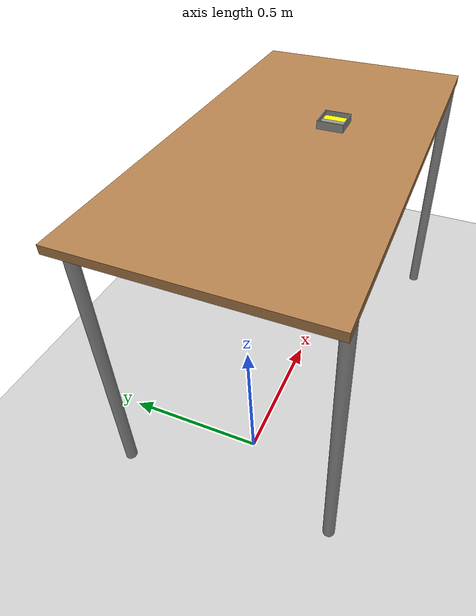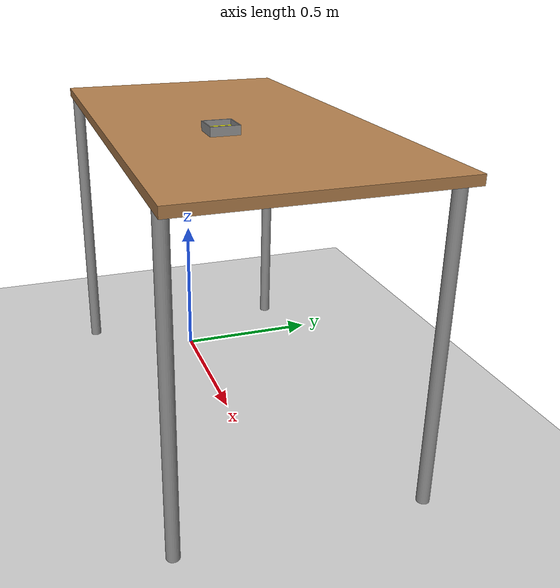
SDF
<sdf version="1.7">
 <world name="default">
  <light name="sun" type="directional">
   <pose>0 0 10 0 -0 0</pose>
   <diffuse>0.8 0.8 0.8 1</diffuse>
   <specular>0.2 0.2 0.2 1</specular>
   <attenuation>
    <range>1000</range>
    <constant>0.9</constant>
    <linear>0.01</linear>
    <quadratic>0.001</quadratic>
   </attenuation>
   <direction>-0.5 0.1 -0.9</direction>
   <spot><inner_angle>0</inner_angle><outer_angle>0</outer_angle><falloff>0</falloff></spot>
  </light>
  <model name="ground_plane">
   <static>1</static>
   <link name="link">
    <collision name="collision">
     <geometry><plane><normal>0 0 1</normal><size>100 100</size></plane></geometry>
     <surface>
      <contact><collide_bitmask>65535</collide_bitmask></contact>
      <friction><ode><mu>100</mu><mu2>50</mu2></ode></friction>
     </surface>
    </collision>
    <visual name="visual">
     <cast_shadows>0</cast_shadows>
     <geometry><plane><normal>0 0 1</normal><size>100 100</size></plane></geometry>
     <material>
      <script><uri>file://media/materials/scripts/gazebo.material</uri><name>Gazebo/Grey</name></script>
     </material>
    </visual>
   </link>
  </model>
  <gravity>0 0 -9.8</gravity>
  <magnetic_field>6e-06 2.3e-05 -4.2e-05</magnetic_field>
  <atmosphere type="adiabatic"/>
  <physics type="ode">
   <max_step_size>0.001</max_step_size>
   <real_time_factor>1</real_time_factor>
   <real_time_update_rate>1000</real_time_update_rate>
  </physics>
  <scene><ambient>0.4 0.4 0.4 1</ambient><background>0.7 0.7 0.7 1</background><shadows>1</shadows></scene>
  <spherical_coordinates>
   <surface_model>EARTH_WGS84</surface_model>
   <latitude_deg>0</latitude_deg>
   <longitude_deg>0</longitude_deg>
   <elevation>0</elevation>
   <heading_deg>0</heading_deg>
  </spherical_coordinates>
  <model name="table">
   <static>1</static>
   <link name="link">
    <collision name="surface">
     <pose>0 0 1 0 -0 0</pose>
     <geometry><box><size>1.5 0.8 0.03</size></box></geometry>
     <surface><friction><ode><mu>0.6</mu><mu2>0.6</mu2></ode></friction></surface>
    </collision>
    <visual name="visual1">
     <pose>0 0 1 0 -0 0</pose>
     <geometry><box><size>1.5 0.8 0.03</size></box></geometry>
     <material>
      <script><uri>file://media/materials/scripts/gazebo.material</uri><name>Gazebo/Wood</name></script>
     </material>
    </visual>
    <collision name="front_left_leg">
     <pose>0.68 0.38 0.5 0 -0 0</pose>
     <geometry><cylinder><radius>0.02</radius><length>1</length></cylinder></geometry>
    </collision>
    <visual name="front_left_leg">
     <pose>0.68 0.38 0.5 0 -0 0</pose>
     <geometry><cylinder><radius>0.02</radius><length>1</length></cylinder></geometry>
     <material>
      <script><uri>file://media/materials/scripts/gazebo.material</uri><name>Gazebo/Grey</name></script>
     </material>
    </visual>
    <collision name="front_right_leg">
     <pose>0.68 -0.38 0.5 0 -0 0</pose>
     <geometry><cylinder><radius>0.02</radius><length>1</length></cylinder></geometry>
    </collision>
    <visual name="front_right_leg">
     <pose>0.68 -0.38 0.5 0 -0 0</pose>
     <geometry><cylinder><radius>0.02</radius><length>1</length></cylinder></geometry>
     <material>
      <script><uri>file://media/materials/scripts/gazebo.material</uri><name>Gazebo/Grey</name></script>
     </material>
    </visual>
    <collision name="back_right_leg">
     <pose>-0.68 -0.38 0.5 0 -0 0</pose>
     <geometry><cylinder><radius>0.02</radius><length>1</length></cylinder></geometry>
    </collision>
    <visual name="back_right_leg">
     <pose>-0.68 -0.38 0.5 0 -0 0</pose>
     <geometry><cylinder><radius>0.02</radius><length>1</length></cylinder></geometry>
     <material>
      <script><uri>file://media/materials/scripts/gazebo.material</uri><name>Gazebo/Grey</name></script>
     </material>
    </visual>
    <collision name="back_left_leg">
     <pose>-0.68 0.38 0.5 0 -0 0</pose>
     <geometry><cylinder><radius>0.02</radius><length>1</length></cylinder></geometry>
    </collision>
    <visual name="back_left_leg">
     <pose>-0.68 0.38 0.5 0 -0 0</pose>
     <geometry><cylinder><radius>0.02</radius><length>1</length></cylinder></geometry>
     <material>
      <script><uri>file://media/materials/scripts/gazebo.material</uri><name>Gazebo/Grey</name></script>
     </material>
    </visual>
   </link>
   <pose>0.47976 0.019502 0 0 -0 0</pose>
  </model>
  <model name="Provino_vero">
   <link name="link_1">
    <inertial>
     <mass>1</mass>
     <inertia>
      <ixx>0.166667</ixx>
      <ixy>0</ixy>
      <ixz>0</ixz>
      <iyy>0.166667</iyy>
      <iyz>0</iyz>
      <izz>0.166667</izz>
     </inertia>
    </inertial>
    <pose>-0.008313 -0.007251 0 0 -0 0</pose>
    <visual name="visual">
     <geometry>
      <mesh>
       <uri>/home/eleonora/catkin_ws/src/robotics_project/Provino_vero/meshes/Case.dae</uri>
       <scale>1 1 1</scale>
      </mesh>
     </geometry>
     <material>
      <lighting>1</lighting>
      <script><uri>file://media/materials/scripts/gazebo.material</uri><name>Gazebo/Grey</name></script>
      <shader type="pixel"><normal_map>__default__</normal_map></shader>
      <emissive>1 1 1 1</emissive>
      <ambient>1 1 1 1</ambient>
      <diffuse>1 1 1 1</diffuse>
      <specular>1 1 1 1</specular>
     </material>
    </visual>
    <collision name="collision">
     <geometry>
      <mesh>
       <uri>/home/eleonora/catkin_ws/src/robotics_project/Provino_vero/meshes/Case.dae</uri>
       <scale>1 1 1</scale>
      </mesh>
     </geometry>
     <surface>
      <friction>
       <ode><mu>1</mu><mu2>1</mu2><fdir1>0 0 0</fdir1><slip1>0</slip1><slip2>0</slip2></ode>
       <torsional>
        <coefficient>1</coefficient>
        <patch_radius>0</patch_radius>
        <surface_radius>0</surface_radius>
        <use_patch_radius>1</use_patch_radius>
        <ode><slip>0</slip></ode>
       </torsional>
      </friction>
      <bounce><restitution_coefficient>0</restitution_coefficient><threshold>1e+06</threshold></bounce>
      <contact>
       <collide_without_contact>0</collide_without_contact>
       <collide_without_contact_bitmask>1</collide_without_contact_bitmask>
       <collide_bitmask>1</collide_bitmask>
       <ode>
        <soft_cfm>0</soft_cfm>
        <soft_erp>0.2</soft_erp>
        <kp>1e+13</kp>
        <kd>1</kd>
        <max_vel>0.01</max_vel>
        <min_depth>0</min_depth>
       </ode>
       <bullet>
        <split_impulse>1</split_impulse>
        <split_impulse_penetration_threshold>-0.01</split_impulse_penetration_threshold>
        <soft_cfm>0</soft_cfm>
        <soft_erp>0.2</soft_erp>
        <kp>1e+13</kp>
        <kd>1</kd>
       </bullet>
      </contact>
     </surface>
    </collision>
   </link>
   <link name="link_3">
    <inertial>
     <mass>1</mass>
     <inertia>
      <ixx>0.166667</ixx>
      <ixy>0</ixy>
      <ixz>0</ixz>
      <iyy>0.166667</iyy>
      <iyz>0</iyz>
      <izz>0.166667</izz>
     </inertia>
    </inertial>
    <pose>0.002637 0.002299 0 0 -0 0</pose>
    <visual name="visual">
     <geometry>
      <mesh>
       <uri>/home/eleonora/catkin_ws/src/robotics_project/Provino_vero/meshes/Mesh2.dae</uri>
       <scale>1 1 1</scale>
      </mesh>
     </geometry>
     <material>
      <lighting>1</lighting>
      <script><uri>file://media/materials/scripts/gazebo.material</uri><name>Gazebo/Grey</name></script>
      <shader type="pixel"><normal_map>__default__</normal_map></shader>
      <emissive>0.8 0.8 0.8 0.8</emissive>
      <ambient>0.8 0.8 0.8 0.8</ambient>
      <diffuse>0.8 0.8 0.8 0.8</diffuse>
      <specular>0.8 0.8 0.8 0.8</specular>
     </material>
    </visual>
    <collision name="collision">
     <geometry>
      <mesh>
       <uri>/home/eleonora/catkin_ws/src/robotics_project/Provino_vero/meshes/Mesh2.dae</uri>
       <scale>1 1 1</scale>
      </mesh>
     </geometry>
     <surface>
      <friction>
       <ode><mu>1</mu><mu2>1</mu2><fdir1>0 0 0</fdir1><slip1>0</slip1><slip2>0</slip2></ode>
       <torsional>
        <coefficient>1</coefficient>
        <patch_radius>0</patch_radius>
        <surface_radius>0</surface_radius>
        <use_patch_radius>1</use_patch_radius>
        <ode><slip>0</slip></ode>
       </torsional>
      </friction>
      <bounce><restitution_coefficient>0</restitution_coefficient><threshold>1e+06</threshold></bounce>
      <contact>
       <collide_without_contact>0</collide_without_contact>
       <collide_without_contact_bitmask>1</collide_without_contact_bitmask>
       <collide_bitmask>1</collide_bitmask>
       <ode>
        <soft_cfm>0</soft_cfm>
        <soft_erp>0.2</soft_erp>
        <kp>1e+13</kp>
        <kd>1</kd>
        <max_vel>0.01</max_vel>
        <min_depth>0</min_depth>
       </ode>
       <bullet>
        <split_impulse>1</split_impulse>
        <split_impulse_penetration_threshold>-0.01</split_impulse_penetration_threshold>
        <soft_cfm>0</soft_cfm>
        <soft_erp>0.2</soft_erp>
        <kp>1e+13</kp>
        <kd>1</kd>
       </bullet>
      </contact>
     </surface>
    </collision>
   </link>
   <link name="link_4">
    <inertial>
     <mass>1</mass>
     <inertia>
      <ixx>0.166667</ixx>
      <ixy>0</ixy>
      <ixz>0</ixz>
      <iyy>0.166667</iyy>
      <iyz>0</iyz>
      <izz>0.166667</izz>
     </inertia>
    </inertial>
    <pose>0.002178 0.002478 0 0 -0 0</pose>
    <visual name="visual">
     <geometry>
      <mesh>
       <uri>/home/eleonora/catkin_ws/src/robotics_project/Provino_vero/meshes/Mesh3.dae</uri>
       <scale>1 1 1</scale>
      </mesh>
     </geometry>
     <material>
      <lighting>1</lighting>
      <script><uri>file://media/materials/scripts/gazebo.material</uri><name>Gazebo/Grey</name></script>
      <shader type="pixel"><normal_map>__default__</normal_map></shader>
      <emissive>1 1 0 0</emissive>
      <ambient>1 1 0 0</ambient>
      <diffuse>1 1 0 1</diffuse>
      <specular>1 1 0 1</specular>
     </material>
    </visual>
    <collision name="collision">
     <geometry>
      <mesh>
       <uri>/home/eleonora/catkin_ws/src/robotics_project/Provino_vero/meshes/Mesh3.dae</uri>
       <scale>1 1 1</scale>
      </mesh>
     </geometry>
     <surface>
      <friction>
       <ode><mu>1</mu><mu2>1</mu2><fdir1>0 0 0</fdir1><slip1>0</slip1><slip2>0</slip2></ode>
       <torsional>
        <coefficient>1</coefficient>
        <patch_radius>0</patch_radius>
        <surface_radius>0</surface_radius>
        <use_patch_radius>1</use_patch_radius>
        <ode><slip>0</slip></ode>
       </torsional>
      </friction>
      <bounce><restitution_coefficient>0</restitution_coefficient><threshold>1e+06</threshold></bounce>
      <contact>
       <collide_without_contact>0</collide_without_contact>
       <collide_without_contact_bitmask>1</collide_without_contact_bitmask>
       <collide_bitmask>1</collide_bitmask>
       <ode>
        <soft_cfm>0</soft_cfm>
        <soft_erp>0.2</soft_erp>
        <kp>1e+13</kp>
        <kd>1</kd>
        <max_vel>0.01</max_vel>
        <min_depth>0</min_depth>
       </ode>
       <bullet>
        <split_impulse>1</split_impulse>
        <split_impulse_penetration_threshold>-0.01</split_impulse_penetration_threshold>
        <soft_cfm>0</soft_cfm>
        <soft_erp>0.2</soft_erp>
        <kp>1e+13</kp>
        <kd>1</kd>
       </bullet>
      </contact>
     </surface>
    </collision>
   </link>
   <link name="link_5">
    <inertial>
     <mass>1</mass>
     <inertia>
      <ixx>0.166667</ixx>
      <ixy>0</ixy>
      <ixz>0</ixz>
      <iyy>0.166667</iyy>
      <iyz>0</iyz>
      <izz>0.166667</izz>
     </inertia>
    </inertial>
    <pose>0.003498 0.002473 0 0 -0 0</pose>
    <visual name="visual">
     <geometry>
      <mesh>
       <uri>/home/eleonora/catkin_ws/src/robotics_project/Provino_vero/meshes/Mesh4.dae</uri>
       <scale>1 1 1</scale>
      </mesh>
     </geometry>
     <material>
      <lighting>1</lighting>
      <script><uri>file://media/materials/scripts/gazebo.material</uri><name>Gazebo/Grey</name></script>
      <shader type="pixel"><normal_map>__default__</normal_map></shader>
      <emissive>1 1 0 1</emissive>
      <ambient>1 1 0 1</ambient>
      <diffuse>1 1 0 1</diffuse>
      <specular>1 1 0 1</specular>
     </material>
    </visual>
    <collision name="collision">
     <geometry>
      <mesh>
       <uri>/home/eleonora/catkin_ws/src/robotics_project/Provino_vero/meshes/Mesh4.dae</uri>
       <scale>1 1 1</scale>
      </mesh>
     </geometry>
     <surface>
      <friction>
       <ode><mu>1</mu><mu2>1</mu2><fdir1>0 0 0</fdir1><slip1>0</slip1><slip2>0</slip2></ode>
       <torsional>
        <coefficient>1</coefficient>
        <patch_radius>0</patch_radius>
        <surface_radius>0</surface_radius>
        <use_patch_radius>1</use_patch_radius>
        <ode><slip>0</slip></ode>
       </torsional>
      </friction>
      <bounce><restitution_coefficient>0</restitution_coefficient><threshold>1e+06</threshold></bounce>
      <contact>
       <collide_without_contact>0</collide_without_contact>
       <collide_without_contact_bitmask>1</collide_without_contact_bitmask>
       <collide_bitmask>1</collide_bitmask>
       <ode>
        <soft_cfm>0</soft_cfm>
        <soft_erp>0.2</soft_erp>
        <kp>1e+13</kp>
        <kd>1</kd>
        <max_vel>0.01</max_vel>
        <min_depth>0</min_depth>
       </ode>
       <bullet>
        <split_impulse>1</split_impulse>
        <split_impulse_penetration_threshold>-0.01</split_impulse_penetration_threshold>
        <soft_cfm>0</soft_cfm>
        <soft_erp>0.2</soft_erp>
        <kp>1e+13</kp>
        <kd>1</kd>
       </bullet>
      </contact>
     </surface>
    </collision>
   </link>
   <joint name="link_1_JOINT_0" type="fixed">
    <parent>link_1</parent>
    <child>link_3</child>
    <physics>
     <ode><limit><cfm>0</cfm><erp>0.2</erp></limit><suspension><cfm>0</cfm><erp>0.2</erp></suspension></ode>
    </physics>
   </joint>
   <joint name="link_1_JOINT_1" type="fixed">
    <parent>link_1</parent>
    <child>link_4</child>
    <physics>
     <ode><limit><cfm>0</cfm><erp>0.2</erp></limit><suspension><cfm>0</cfm><erp>0.2</erp></suspension></ode>
    </physics>
   </joint>
   <joint name="link_1_JOINT_2" type="fixed">
    <parent>link_1</parent>
    <child>link_4</child>
    <physics>
     <ode><limit><cfm>0</cfm><erp>0.2</erp></limit><suspension><cfm>0</cfm><erp>0.2</erp></suspension></ode>
    </physics>
   </joint>
   <joint name="link_1_JOINT_3" type="fixed">
    <parent>link_1</parent>
    <child>link_5</child>
    <physics>
     <ode><limit><cfm>0</cfm><erp>0.2</erp></limit><suspension><cfm>0</cfm><erp>0.2</erp></suspension></ode>
    </physics>
   </joint>
   <static>0</static>
   <pose>0.632325 -0.048917 1.018 1e-06 -9e-06 -0.000391</pose>
  </model>
 </world>
</sdf>
